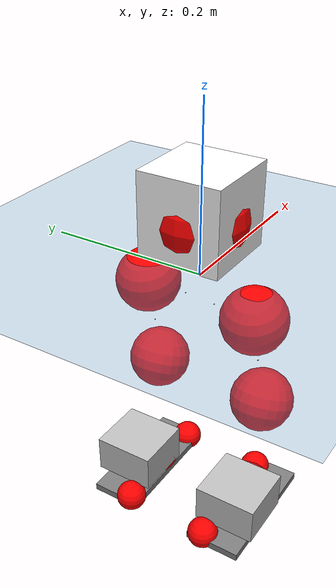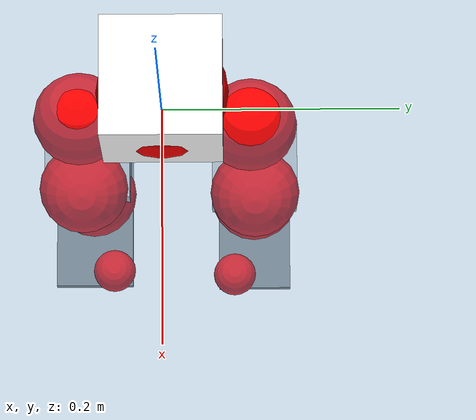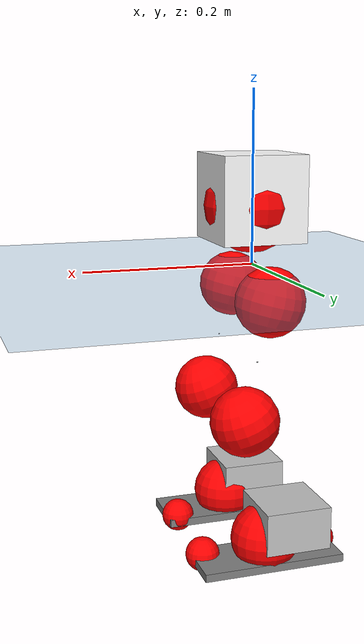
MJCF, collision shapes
<mujoco model="pi_12dof_release_v1">
  <compiler angle="radian" assetdir="assets" balanceinertia="true" inertiafromgeom="false"/>

  <option timestep="0.005" density="1.2" viscosity="2e-05"/>

  <size nkey="1"/>

  <visual>
    <quality shadowsize="8192"/>
    <map shadowclip="0.5"/>
  </visual>

  <default>
    <default class="/">
      <joint armature="0.01" damping="0.01" frictionloss="0.01"/>
      <geom contype="0" conaffinity="0" group="1" solref="-1000 -80"/>
      <site size="0.01 0.005 0.005" group="5"/>
      <general forcelimited="true" biastype="affine" gainprm="20" biasprm="0 -20 -0.5"/>
      <default class="foot">
        <geom size="0.0845 0.036 0.005" type="box" condim="6" group="4" priority="1" friction="0.9 0.2 0.2" solimp="0.015 1 0.005"/>
      </default>
      <default class="reward_collision_sphere">
        <geom group="5" rgba="1 0 0 1"/>
      </default>
    </default>
  </default>

  <asset>
    <texture type="skybox" colorspace="auto" name="//unnamed_texture_0" builtin="gradient" rgb1="0.95 0.95 0.95" rgb2="0.95 0.95 0.95" width="100" height="600"/>
    <texture type="2d" colorspace="auto" name="texplane" builtin="checker" rgb1="0.345 0.575 0.748" rgb2="0.345 0.575 0.748" markrgb="1 1 1" width="512" height="512"/>
    <material name="MatPlane" class="/" texture="texplane" texuniform="true" texrepeat="2 2" specular="0.9"/>
    <mesh name="baselink_1" class="/" file="baselink_1.STL"/>
    <mesh name="r_hip_pitch_link" class="/" file="r_hip_pitch_link.STL"/>
    <mesh name="r_hip_roll_link" class="/" file="r_hip_roll_link.STL"/>
    <mesh name="r_thigh_link" class="/" file="r_thigh_link.STL"/>
    <mesh name="r_calf_link" class="/" file="r_calf_link.STL"/>
    <mesh name="r_ankle_pitch_link" class="/" file="r_ankle_pitch_link.STL"/>
    <mesh name="r_ankle_roll_link" class="/" file="r_ankle_roll_link.STL"/>
    <mesh name="l_hip_pitch_link" class="/" file="l_hip_pitch_link.STL"/>
    <mesh name="l_hip_roll_link" class="/" file="l_hip_roll_link.STL"/>
    <mesh name="l_thigh_link" class="/" file="l_thigh_link.STL"/>
    <mesh name="l_calf_link" class="/" file="l_calf_link.STL"/>
    <mesh name="l_ankle_pitch_link" class="/" file="l_ankle_pitch_link.STL"/>
    <mesh name="l_ankle_roll_link" class="/" file="l_ankle_roll_link.STL"/>
  </asset>

  <worldbody>
    <geom name="floor" class="/" size="100 100 0.125" type="plane" group="0" material="MatPlane"/>
    <light name="toplight_shadow" class="/" pos="0 0 5" dir="0.0990148 0.0990148 -0.990148" type="directional" ambient="0.04 0.04 0.04" diffuse="0.55 0.55 0.55" specular="0.12 0.12 0.12"/>
    <light name="toplight_fill" class="/" pos="0 0 5" dir="0.0990148 0.0990148 -0.990148" type="directional" castshadow="false" ambient="0.04 0.04 0.04" diffuse="0.3 0.3 0.3" specular="0.08 0.08 0.08"/>
    <body name="trunk" pos="0.00223179 0.00168597 0.000942231" quat="1 -9.5556e-06 -5.0391e-06 -7.5367e-05">
      <inertial pos="0.00262461 -0.000504842 0.0393155" quat="0.694424 -0.00106536 0.00271043 0.71956" mass="2.14341" diaginertia="0.0147966 0.00683814 0.00357242"/>
      <joint name="//unnamed_joint_0" type="free"/>
      <geom name="//unnamed_geom_1" class="/" type="mesh" density="0" rgba="1 1 1 1" mesh="baselink_1"/>
      <geom name="//unnamed_geom_2" class="/" size="0.049654 0.049654 0.049654" pos="0 0 0.0776658" type="box" rgba="1 1 1 1"/>
      <geom name="//unnamed_geom_3" class="reward_collision_sphere" size="0.0546194" pos="0 0 0.0679576"/>
      <site name="imu" class="/" pos="0.00261524 0.00459465 -0.00781347" size="0.00993079"/>
      <camera name="track" class="/" pos="0 -1.86971 0" quat="0.707107 0.707107 0 0" mode="trackcom"/>
      <camera name="ego_camera" class="/" pos="0.0805171 0 0.174748" quat="-0.5 -0.5 0.5 0.5"/>
      <body name="r_hip_pitch_link" pos="-0.000874988 -0.0203873 -0.0344641" quat="0.992319 -0.000141988 -0.1237 -0.000640682">
        <inertial pos="-0.000771201 -0.0549324 0.000450116" quat="-0.017924 0.704492 -0.0284058 0.708917" mass="0.364766" diaginertia="0.000156003 6.78647e-05 7.28781e-05"/>
        <joint name="r_hip_pitch_joint" class="/" pos="0 0 0" axis="-0.00969905 -0.999943 0.00446753" range="-1.71351 1.30552" armature="0.00983993" damping="0.0194867" frictionloss="0.00999843"/>
        <geom name="//unnamed_geom_4" class="/" type="mesh" density="0" rgba="0.75294 0.75294 0.75294 1" mesh="r_hip_pitch_link"/>
        <geom name="//unnamed_geom_5" class="/" size="0.00049654 0.00049654 0.00049654" type="box" rgba="0.75294 0.75294 0.75294 1"/>
        <body name="r_hip_roll_link" pos="-0.00299454 -0.0528339 -0.00158421" quat="0.999999 0.000851753 0.000858292 1.21822e-05">
          <inertial pos="-0.00104728 -0.000750541 -0.060363" quat="0.707401 -0.0898535 -0.0816276 0.696309" mass="0.371505" diaginertia="0.000468411 0.000195872 0.000109222"/>
          <joint name="r_hip_roll_joint" class="/" pos="0 0 0" axis="-0.999907 -0.00470438 0.0128237" range="-0.139825 0.54469" armature="0.0107953" damping="0" frictionloss="0.00853053"/>
          <geom name="//unnamed_geom_6" class="/" type="mesh" density="0" rgba="0.75294 0.75294 0.75294 1" mesh="r_hip_roll_link"/>
          <geom name="//unnamed_geom_7" class="/" size="0.00049654 0.00049654 0.00049654" type="box" rgba="0.75294 0.75294 0.75294 1"/>
          <geom name="//unnamed_geom_8" class="reward_collision_sphere" size="0.0397232"/>
          <body name="r_thigh_link" pos="-9.07728e-06 -0.00104818 -0.0660911" quat="0.999999 -0.000838888 -0.000856599 -0.000413305">
            <inertial pos="0.00267437 0.000232209 -0.046158" quat="0.74207 0.670296 0.00137256 0.00584105" mass="0.118118" diaginertia="0.000177939 7.03072e-05 5.00424e-05"/>
            <joint name="r_thigh_joint" class="/" pos="0 0 0" axis="0.015526 0.00470001 -0.999868" stiffness="0.00191306" range="-0.245749 0.628407" armature="0.0101819" damping="4.35452e-05" frictionloss="0.00883428"/>
            <geom name="//unnamed_geom_9" class="/" type="mesh" density="0" rgba="0.75294 0.75294 0.75294 1" mesh="r_thigh_link"/>
            <geom name="//unnamed_geom_10" class="/" size="0.00049654 0.00049654 0.00049654" type="box" rgba="0.75294 0.75294 0.75294 1"/>
            <body name="r_calf_link" pos="-0.00125911 -0.0019069 -0.0703474" quat="0.947772 -0.000484977 0.318949 -3.36535e-05">
              <inertial pos="0.00125879 0.000266662 -0.0696179" quat="0.999847 0.00118301 -0.00591086 0.0164417" mass="0.805005" diaginertia="0.00517946 0.00246159 0.000153383"/>
              <joint name="r_calf_joint" class="/" pos="0 0 0" axis="-0.000264877 -0.999998 0.00212757" range="-1.62977 0.643989" armature="0.0110646" damping="0.00867157" frictionloss="0.010281"/>
              <geom name="//unnamed_geom_11" class="/" type="mesh" density="0" rgba="0.75294 0.75294 0.75294 1" mesh="r_calf_link"/>
              <geom name="//unnamed_geom_12" class="/" size="0.00049654 0.00049654 0.00049654" type="box" rgba="0.75294 0.75294 0.75294 1"/>
              <geom name="//unnamed_geom_13" class="reward_collision_sphere" size="0.0397232"/>
              <body name="r_ankle_pitch_link" pos="-0.000578124 -0.0023088 -0.133549" quat="0.980076 2.95986e-05 -0.198621 2.09517e-05">
                <inertial pos="0.00266281 0.00407084 -9.05589e-05" quat="0.00350891 0.706953 -0.00265391 0.707247" mass="0.174725" diaginertia="0.000444212 0.000159163 0.000104556"/>
                <joint name="r_ankle_pitch_joint" class="/" pos="0 0 0" axis="0.00523777 -0.999874 0.0149938" stiffness="0.00905829" range="-1.25899 0.497654" armature="0.00881106" damping="0.0186857" frictionloss="0.00852406"/>
                <geom name="//unnamed_geom_14" class="/" type="mesh" density="0" rgba="0.75294 0.75294 0.75294 1" mesh="r_ankle_pitch_link"/>
                <geom name="//unnamed_geom_15" class="/" size="0.0387301 0.0397232 0.024827" type="box" rgba="0.75294 0.75294 0.75294 1"/>
                <body name="r_ankle_roll_link" pos="0.0815789 0.00527063 0.00230152" quat="1 -0.000340129 0.000363444 0.000472737">
                  <inertial pos="-0.0247804 -0.00257577 -0.0115872" quat="0.559691 0.429495 0.436519 0.558328" mass="0.496882" diaginertia="0.00168008 0.000766441 0.000250953"/>
                  <joint name="r_ankle_roll_joint" class="/" pos="0 0 0" axis="-0.999981 0.00566834 -0.0023429" range="-0.145016 0.168109" armature="0.0100756" damping="0.015139" frictionloss="0.0103139"/>
                  <geom name="//unnamed_geom_16" class="/" type="mesh" density="0" rgba="0.75294 0.75294 0.75294 1" mesh="r_ankle_roll_link"/>
                  <geom name="//unnamed_geom_17" class="/" type="mesh" rgba="0.75294 0.75294 0.75294 1" mesh="r_ankle_roll_link"/>
                  <geom name="right_foot" class="foot" size="0.08508 0.0361124 0.00480086" pos="-0.0547516 0 -0.0427162"/>
                  <geom name="//unnamed_geom_19" class="reward_collision_sphere" size="0.0397232" pos="-0.0536781 0 -0.0194165"/>
                  <geom name="//unnamed_geom_20" class="reward_collision_sphere" size="0.0198616" pos="0.0161034 0.0186971 -0.0388329"/>
                  <geom name="//unnamed_geom_21" class="reward_collision_sphere" size="0.0198616" pos="-0.128827 0.0186971 -0.0388329"/>
                  <site name="right_foot" class="foot" pos="-0.0547516 0 -0.0427162" size="0.00993079"/>
                </body>
              </body>
            </body>
          </body>
        </body>
      </body>
      <body name="l_hip_pitch_link" pos="0.000191115 0.0184602 -0.0318936" quat="0.992209 1.47829e-05 -0.124588 8.74335e-05">
        <inertial pos="0.00269111 0.0497177 -5.72586e-05" quat="-0.0393587 0.713061 0.0345493 0.699143" mass="0.368388" diaginertia="0.000180957 7.43616e-05 8.37038e-05"/>
        <joint name="l_hip_pitch_joint" class="/" pos="0 0 0" axis="-0.00133592 0.999999 -0.000496843" range="-1.28682 1.73482" armature="0.00919174" damping="0.0106574" frictionloss="0.0110959"/>
        <geom name="//unnamed_geom_22" class="/" type="mesh" density="0" rgba="0.75294 0.75294 0.75294 1" mesh="l_hip_pitch_link"/>
        <geom name="//unnamed_geom_23" class="/" size="0.00049654 0.00049654 0.00049654" type="box" rgba="0.75294 0.75294 0.75294 1"/>
        <body name="l_hip_roll_link" pos="0.00345917 0.0544476 -0.000652754" quat="1 -0.000745308 -8.70184e-05 0.000631314">
          <inertial pos="-0.000392272 0.00152626 -0.0598139" quat="0.692171 -0.0666027 -0.0769606 0.714521" mass="0.39304" diaginertia="0.000474496 0.000203079 0.000113166"/>
          <joint name="l_hip_roll_joint" class="/" pos="0 0 0" axis="-0.999946 -0.00614863 -0.0083894" range="-0.480809 0.15797" armature="0.011318" damping="0" frictionloss="0.00859903"/>
          <geom name="//unnamed_geom_24" class="/" type="mesh" density="0" rgba="0.75294 0.75294 0.75294 1" mesh="l_hip_roll_link"/>
          <geom name="//unnamed_geom_25" class="/" size="0.00049654 0.00049654 0.00049654" type="box" rgba="0.75294 0.75294 0.75294 1"/>
          <geom name="//unnamed_geom_26" class="reward_collision_sphere" size="0.0397232"/>
          <body name="l_thigh_link" pos="-0.00197509 0.00185185 -0.0683169" quat="1 8.6967e-05 0.000562755 8.25563e-05">
            <inertial pos="-0.000459524 -0.00135477 -0.0454271" quat="0.67918 0.733877 0.00744587 -0.00918229" mass="0.108238" diaginertia="0.000179561 6.62097e-05 5.02086e-05"/>
            <joint name="l_thigh_joint" class="/" pos="0 0 0" axis="-0.00119552 -0.0033826 -0.999994" range="-0.636228 0.321736" armature="0.0103091" damping="0" frictionloss="0.00941227"/>
            <geom name="//unnamed_geom_27" class="/" type="mesh" density="0" rgba="0.75294 0.75294 0.75294 1" mesh="l_thigh_link"/>
            <geom name="//unnamed_geom_28" class="/" size="0.00049654 0.00049654 0.00049654" type="box" rgba="0.75294 0.75294 0.75294 1"/>
            <body name="l_calf_link" pos="-0.00193088 0.00292911 -0.0688763" quat="0.947615 -0.000365648 0.319415 -0.000440384">
              <inertial pos="0.00331099 0.00536151 -0.0691278" quat="0.999973 0.00159142 -0.0071088 0.000591575" mass="0.803071" diaginertia="0.00522428 0.00260411 0.000156806"/>
              <joint name="l_calf_joint" class="/" pos="0 0 0" axis="-0.00474988 0.999944 0.00949915" range="-0.592921 1.68636" armature="0.00999109" damping="0.00212717" frictionloss="0.00866879"/>
              <geom name="//unnamed_geom_29" class="/" type="mesh" density="0" rgba="0.75294 0.75294 0.75294 1" mesh="l_calf_link"/>
              <geom name="//unnamed_geom_30" class="/" size="0.00049654 0.00049654 0.00049654" type="box" rgba="0.75294 0.75294 0.75294 1"/>
              <geom name="//unnamed_geom_31" class="reward_collision_sphere" size="0.0397232"/>
              <body name="l_ankle_pitch_link" pos="0.000334035 0.000849929 -0.134239" quat="0.980053 0.000800645 -0.198736 -5.99658e-05">
                <inertial pos="0.00610341 0.000115561 0.000404093" quat="0.00064986 0.709902 0.000658702 0.7043" mass="0.172815" diaginertia="0.000443896 0.000164324 0.000105096"/>
                <joint name="l_ankle_pitch_joint" class="/" pos="0 0 0" axis="-0.00287152 0.999974 -0.00664797" stiffness="0.00195106" range="-0.450357 1.35975" armature="0.00958969" damping="0" frictionloss="0.00972297"/>
                <geom name="//unnamed_geom_32" class="/" type="mesh" density="0" rgba="0.75294 0.75294 0.75294 1" mesh="l_ankle_pitch_link"/>
                <geom name="//unnamed_geom_33" class="/" size="0.0387301 0.0397232 0.024827" type="box" rgba="0.75294 0.75294 0.75294 1"/>
                <body name="l_ankle_roll_link" pos="0.080026 -7.2658e-05 -0.000203332" quat="1 7.42379e-05 4.75584e-05 2.50637e-05">
                  <inertial pos="-0.0281684 -0.00118476 -0.0122916" quat="0.561753 0.432696 0.431344 0.557809" mass="0.530811" diaginertia="0.00157703 0.000768596 0.000247357"/>
                  <joint name="l_ankle_roll_joint" class="/" pos="0 0 0" axis="-0.99999 0.001773 0.00413731" stiffness="0.00773918" range="-0.154347 0.0973109" armature="0.00946408" damping="0.0176386" frictionloss="0.0110806"/>
                  <geom name="//unnamed_geom_34" class="/" type="mesh" density="0" rgba="0.75294 0.75294 0.75294 1" mesh="l_ankle_roll_link"/>
                  <geom name="//unnamed_geom_35" class="/" type="mesh" rgba="0.75294 0.75294 0.75294 1" mesh="l_ankle_roll_link"/>
                  <geom name="left_foot" class="foot" size="0.0837979 0.033532 0.00458047" pos="-0.0547516 0 -0.0427162"/>
                  <geom name="//unnamed_geom_37" class="reward_collision_sphere" size="0.0397232" pos="-0.0536781 0 -0.0194165"/>
                  <geom name="//unnamed_geom_38" class="reward_collision_sphere" size="0.0198616" pos="0.0161034 -0.0186971 -0.0388329"/>
                  <geom name="//unnamed_geom_39" class="reward_collision_sphere" size="0.0198616" pos="-0.128827 -0.0186971 -0.0388329"/>
                  <site name="left_foot" class="foot" pos="-0.0547516 0 -0.0427162" size="0.00993079"/>
                </body>
              </body>
            </body>
          </body>
        </body>
      </body>
    </body>
  </worldbody>

  <contact>
    <pair class="/" geom1="floor" geom2="right_foot" name="//unnamed_contact_1"/>
    <pair class="/" geom1="floor" geom2="left_foot" name="//unnamed_contact_0"/>
  </contact>

  <actuator>
    <general name="r_hip_pitch_joint" class="/" joint="r_hip_pitch_joint" forcerange="-22.5736 22.5736" gainprm="19.4198" biasprm="0 -19.4198 -0.504537"/>
    <general name="r_hip_roll_joint" class="/" joint="r_hip_roll_joint" forcerange="-22.4852 22.4852" gainprm="19.4198" biasprm="0 -19.4198 -0.504537"/>
    <general name="r_thigh_joint" class="/" joint="r_thigh_joint" forcerange="-19.6464 19.6464" gainprm="19.4198" biasprm="0 -19.4198 -0.504537"/>
    <general name="r_calf_joint" class="/" joint="r_calf_joint" forcerange="-21.976 21.976" gainprm="19.4198" biasprm="0 -19.4198 -0.504537"/>
    <general name="r_ankle_pitch_joint" class="/" joint="r_ankle_pitch_joint" forcerange="-20.4824 20.4824" gainprm="19.4198" biasprm="0 -19.4198 -0.504537"/>
    <general name="r_ankle_roll_joint" class="/" joint="r_ankle_roll_joint" forcerange="-21.4524 21.4524" gainprm="19.4198" biasprm="0 -19.4198 -0.504537"/>
    <general name="l_hip_pitch_joint" class="/" joint="l_hip_pitch_joint" forcerange="-21.0074 21.0074" gainprm="19.4198" biasprm="0 -19.4198 -0.504537"/>
    <general name="l_hip_roll_joint" class="/" joint="l_hip_roll_joint" forcerange="-18.8913 18.8913" gainprm="19.4198" biasprm="0 -19.4198 -0.504537"/>
    <general name="l_thigh_joint" class="/" joint="l_thigh_joint" forcerange="-22.3982 22.3982" gainprm="19.4198" biasprm="0 -19.4198 -0.504537"/>
    <general name="l_calf_joint" class="/" joint="l_calf_joint" forcerange="-20.7244 20.7244" gainprm="19.4198" biasprm="0 -19.4198 -0.504537"/>
    <general name="l_ankle_pitch_joint" class="/" joint="l_ankle_pitch_joint" forcerange="-20.0555 20.0555" gainprm="19.4198" biasprm="0 -19.4198 -0.504537"/>
    <general name="l_ankle_roll_joint" class="/" joint="l_ankle_roll_joint" forcerange="-22.9842 22.9842" gainprm="19.4198" biasprm="0 -19.4198 -0.504537"/>
  </actuator>

  <sensor>
    <gyro site="imu" name="imu_angular_velocity"/>
    <velocimeter site="imu" name="imu_linear_velocity"/>
    <framelinvel objtype="site" objname="left_foot" name="left_foot_global_linear_velocity"/>
    <framelinvel objtype="site" objname="right_foot" name="right_foot_global_linear_velocity"/>
  </sensor>

  <keyframe>
    <key name="home" qpos="0 0 0.291 1 0 0 0 0.4 0 0 -0.8 0.4 0 -0.4 0 0 0.8 -0.4 0"/>
  </keyframe>
</mujoco>
